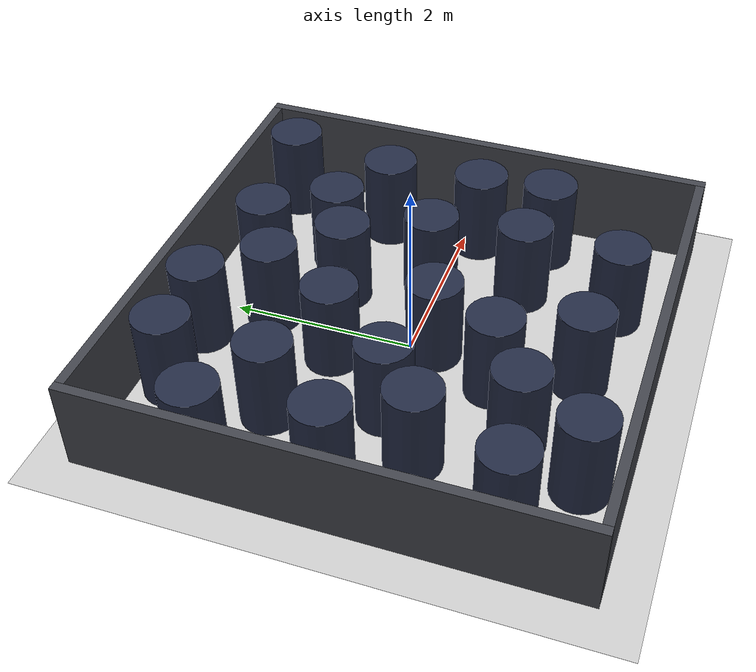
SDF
<sdf version="1.7">
 <world name="default">
  <light name="user_directional_light_0" type="directional">
   <pose>8.82764 2.91095 1 0 -0 0</pose>
   <diffuse>0.5 0.5 0.5 1</diffuse>
   <specular>0.1 0.1 0.1 1</specular>
   <attenuation>
    <range>1000</range>
    <constant>0.9</constant>
    <linear>0.01</linear>
    <quadratic>0.001</quadratic>
   </attenuation>
   <direction>0.1 0.1 -0.9</direction>
   <spot><inner_angle>0</inner_angle><outer_angle>0</outer_angle><falloff>0</falloff></spot>
  </light>
  <light name="user_directional_light_1" type="directional">
   <pose>-7.8244 2.91635 1 0 -0 0</pose>
   <diffuse>0.5 0.5 0.5 1</diffuse>
   <specular>0.1 0.1 0.1 1</specular>
   <attenuation>
    <range>1000</range>
    <constant>0.9</constant>
    <linear>0.01</linear>
    <quadratic>0.001</quadratic>
   </attenuation>
   <direction>0.1 0.1 -0.9</direction>
   <spot><inner_angle>0</inner_angle><outer_angle>0</outer_angle><falloff>0</falloff></spot>
  </light>
  <light name="user_directional_light_2" type="directional">
   <pose>-7.75772 -4.88479 1 0 -0 0</pose>
   <diffuse>0.5 0.5 0.5 1</diffuse>
   <specular>0.1 0.1 0.1 1</specular>
   <attenuation>
    <range>1000</range>
    <constant>0.9</constant>
    <linear>0.01</linear>
    <quadratic>0.001</quadratic>
   </attenuation>
   <direction>0.1 0.1 -0.9</direction>
   <spot><inner_angle>0</inner_angle><outer_angle>0</outer_angle><falloff>0</falloff></spot>
  </light>
  <light name="user_directional_light_3" type="directional">
   <pose>8.88456 -3.92028 1 0 -0 0</pose>
   <diffuse>0.5 0.5 0.5 1</diffuse>
   <specular>0.1 0.1 0.1 1</specular>
   <attenuation>
    <range>1000</range>
    <constant>0.9</constant>
    <linear>0.01</linear>
    <quadratic>0.001</quadratic>
   </attenuation>
   <direction>0.1 0.1 -0.9</direction>
   <spot><inner_angle>0</inner_angle><outer_angle>0</outer_angle><falloff>0</falloff></spot>
  </light>
  <model name="ground_plane">
   <static>1</static>
   <link name="link">
    <collision name="collision">
     <geometry><plane><normal>0 0 1</normal><size>100 100</size></plane></geometry>
     <surface>
      <contact><collide_bitmask>65535</collide_bitmask></contact>
      <friction><ode><mu>100</mu><mu2>50</mu2></ode></friction>
     </surface>
    </collision>
    <visual name="visual">
     <cast_shadows>0</cast_shadows>
     <geometry><plane><normal>0 0 1</normal><size>100 100</size></plane></geometry>
     <material>
      <script><uri>file://media/materials/scripts/gazebo.material</uri><name>Gazebo/Grey</name></script>
     </material>
    </visual>
   </link>
  </model>
  <gravity>0 0 -9.8</gravity>
  <magnetic_field>6e-06 2.3e-05 -4.2e-05</magnetic_field>
  <atmosphere type="adiabatic"/>
  <physics type="ode">
   <max_step_size>0.001</max_step_size>
   <real_time_factor>1</real_time_factor>
   <real_time_update_rate>1000</real_time_update_rate>
  </physics>
  <scene><ambient>0.32 0.32 0.32 1</ambient><background>0.7 0.7 0.7 1</background><shadows>1</shadows></scene>
  <spherical_coordinates>
   <surface_model>EARTH_WGS84</surface_model>
   <latitude_deg>0</latitude_deg>
   <longitude_deg>0</longitude_deg>
   <elevation>0</elevation>
   <heading_deg>0</heading_deg>
  </spherical_coordinates>
  <model name="region_wall_left">
   <static>1</static>
   <link name="link">
    <visual name="visual">
     <geometry><box><size>0.1 5.2 1</size></box></geometry>
     <material>
      <ambient>0.17 0.17 0.18 1</ambient>
      <diffuse>0.26 0.27 0.3 1</diffuse>
      <specular>0.02 0.02 0.02 1</specular>
     </material>
    </visual>
    <collision name="collision"><geometry><box><size>0.1 5.2 1</size></box></geometry></collision>
   </link>
   <pose>-2.55 0 0.5 0 -0 0</pose>
  </model>
  <model name="region_wall_right">
   <static>1</static>
   <link name="link">
    <visual name="visual">
     <geometry><box><size>0.1 5.2 1</size></box></geometry>
     <material>
      <ambient>0.17 0.17 0.18 1</ambient>
      <diffuse>0.26 0.27 0.3 1</diffuse>
      <specular>0.02 0.02 0.02 1</specular>
     </material>
    </visual>
    <collision name="collision"><geometry><box><size>0.1 5.2 1</size></box></geometry></collision>
   </link>
   <pose>2.55 0 0.5 0 -0 0</pose>
  </model>
  <model name="region_wall_bottom">
   <static>1</static>
   <link name="link">
    <visual name="visual">
     <geometry><box><size>5 0.1 1</size></box></geometry>
     <material>
      <ambient>0.17 0.17 0.18 1</ambient>
      <diffuse>0.26 0.27 0.3 1</diffuse>
      <specular>0.02 0.02 0.02 1</specular>
     </material>
    </visual>
    <collision name="collision"><geometry><box><size>5 0.1 1</size></box></geometry></collision>
   </link>
   <pose>0 -2.55 0.5 0 -0 0</pose>
  </model>
  <model name="region_wall_top">
   <static>1</static>
   <link name="link">
    <visual name="visual">
     <geometry><box><size>5 0.1 1</size></box></geometry>
     <material>
      <ambient>0.17 0.17 0.18 1</ambient>
      <diffuse>0.26 0.27 0.3 1</diffuse>
      <specular>0.02 0.02 0.02 1</specular>
     </material>
    </visual>
    <collision name="collision"><geometry><box><size>5 0.1 1</size></box></geometry></collision>
   </link>
   <pose>0 2.55 0.5 0 -0 0</pose>
  </model>
  <model name="blue_cylinder_0">
   <static>1</static>
   <link name="link">
    <visual name="visual">
     <geometry><cylinder><radius>0.3</radius><length>1</length></cylinder></geometry>
     <material>
      <ambient>0.06 0.07 0.112 1</ambient>
      <diffuse>0.14 0.17 0.27 1</diffuse>
      <specular>0.02 0.02 0.02 1</specular>
     </material>
    </visual>
    <collision name="collision">
     <geometry><cylinder><radius>0.3</radius><length>1</length></cylinder></geometry>
    </collision>
   </link>
   <pose>2.00979 -0.969959 0.5 0 -0 0</pose>
  </model>
  <model name="blue_cylinder_1">
   <static>1</static>
   <link name="link">
    <visual name="visual">
     <geometry><cylinder><radius>0.3</radius><length>1</length></cylinder></geometry>
     <material>
      <ambient>0.06 0.07 0.112 1</ambient>
      <diffuse>0.14 0.17 0.27 1</diffuse>
      <specular>0.02 0.02 0.02 1</specular>
     </material>
    </visual>
    <collision name="collision">
     <geometry><cylinder><radius>0.3</radius><length>1</length></cylinder></geometry>
    </collision>
   </link>
   <pose>0.036672 -1.82413 0.5 0 -0 0</pose>
  </model>
  <model name="blue_cylinder_2">
   <static>1</static>
   <link name="link">
    <visual name="visual">
     <geometry><cylinder><radius>0.3</radius><length>1</length></cylinder></geometry>
     <material>
      <ambient>0.06 0.07 0.112 1</ambient>
      <diffuse>0.14 0.17 0.27 1</diffuse>
      <specular>0.02 0.02 0.02 1</specular>
     </material>
    </visual>
    <collision name="collision">
     <geometry><cylinder><radius>0.3</radius><length>1</length></cylinder></geometry>
    </collision>
   </link>
   <pose>-2.13635 1.43056 0.5 0 -0 0</pose>
  </model>
  <model name="blue_cylinder_3">
   <static>1</static>
   <link name="link">
    <visual name="visual">
     <geometry><cylinder><radius>0.3</radius><length>1</length></cylinder></geometry>
     <material>
      <ambient>0.06 0.07 0.112 1</ambient>
      <diffuse>0.14 0.17 0.27 1</diffuse>
      <specular>0.02 0.02 0.02 1</specular>
     </material>
    </visual>
    <collision name="collision">
     <geometry><cylinder><radius>0.3</radius><length>1</length></cylinder></geometry>
    </collision>
   </link>
   <pose>1.19154 1.26825 0.5 0 -0 0</pose>
  </model>
  <model name="blue_cylinder_4">
   <static>1</static>
   <link name="link">
    <visual name="visual">
     <geometry><cylinder><radius>0.3</radius><length>1</length></cylinder></geometry>
     <material>
      <ambient>0.06 0.07 0.112 1</ambient>
      <diffuse>0.14 0.17 0.27 1</diffuse>
      <specular>0.02 0.02 0.02 1</specular>
     </material>
    </visual>
    <collision name="collision">
     <geometry><cylinder><radius>0.3</radius><length>1</length></cylinder></geometry>
    </collision>
   </link>
   <pose>1.0395 0.114704 0.5 0 -0 0</pose>
  </model>
  <model name="blue_cylinder_5">
   <static>1</static>
   <link name="link">
    <visual name="visual">
     <geometry><cylinder><radius>0.3</radius><length>1</length></cylinder></geometry>
     <material>
      <ambient>0.06 0.07 0.112 1</ambient>
      <diffuse>0.14 0.17 0.27 1</diffuse>
      <specular>0.02 0.02 0.02 1</specular>
     </material>
    </visual>
    <collision name="collision">
     <geometry><cylinder><radius>0.3</radius><length>1</length></cylinder></geometry>
    </collision>
   </link>
   <pose>-0.522202 2.15883 0.5 0 -0 0</pose>
  </model>
  <model name="blue_cylinder_6">
   <static>1</static>
   <link name="link">
    <visual name="visual">
     <geometry><cylinder><radius>0.3</radius><length>1</length></cylinder></geometry>
     <material>
      <ambient>0.06 0.07 0.112 1</ambient>
      <diffuse>0.14 0.17 0.27 1</diffuse>
      <specular>0.02 0.02 0.02 1</specular>
     </material>
    </visual>
    <collision name="collision">
     <geometry><cylinder><radius>0.3</radius><length>1</length></cylinder></geometry>
    </collision>
   </link>
   <pose>1.14475 -1.95257 0.5 0 -0 0</pose>
  </model>
  <model name="blue_cylinder_7">
   <static>1</static>
   <link name="link">
    <visual name="visual">
     <geometry><cylinder><radius>0.3</radius><length>1</length></cylinder></geometry>
     <material>
      <ambient>0.06 0.07 0.112 1</ambient>
      <diffuse>0.14 0.17 0.27 1</diffuse>
      <specular>0.02 0.02 0.02 1</specular>
     </material>
    </visual>
    <collision name="collision">
     <geometry><cylinder><radius>0.3</radius><length>1</length></cylinder></geometry>
    </collision>
   </link>
   <pose>0.606536 0.977576 0.5 0 -0 0</pose>
  </model>
  <model name="blue_cylinder_8">
   <static>1</static>
   <link name="link">
    <visual name="visual">
     <geometry><cylinder><radius>0.3</radius><length>1</length></cylinder></geometry>
     <material>
      <ambient>0.06 0.07 0.112 1</ambient>
      <diffuse>0.14 0.17 0.27 1</diffuse>
      <specular>0.02 0.02 0.02 1</specular>
     </material>
    </visual>
    <collision name="collision">
     <geometry><cylinder><radius>0.3</radius><length>1</length></cylinder></geometry>
    </collision>
   </link>
   <pose>-1.963 0.193201 0.5 0 -0 0</pose>
  </model>
  <model name="blue_cylinder_9">
   <static>1</static>
   <link name="link">
    <visual name="visual">
     <geometry><cylinder><radius>0.3</radius><length>1</length></cylinder></geometry>
     <material>
      <ambient>0.06 0.07 0.112 1</ambient>
      <diffuse>0.14 0.17 0.27 1</diffuse>
      <specular>0.02 0.02 0.02 1</specular>
     </material>
    </visual>
    <collision name="collision">
     <geometry><cylinder><radius>0.3</radius><length>1</length></cylinder></geometry>
    </collision>
   </link>
   <pose>-0.962573 -1.42307 0.5 0 -0 0</pose>
  </model>
  <model name="blue_cylinder_10">
   <static>1</static>
   <link name="link">
    <visual name="visual">
     <geometry><cylinder><radius>0.3</radius><length>1</length></cylinder></geometry>
     <material>
      <ambient>0.06 0.07 0.112 1</ambient>
      <diffuse>0.14 0.17 0.27 1</diffuse>
      <specular>0.02 0.02 0.02 1</specular>
     </material>
    </visual>
    <collision name="collision">
     <geometry><cylinder><radius>0.3</radius><length>1</length></cylinder></geometry>
    </collision>
   </link>
   <pose>-1.95138 -1.57151 0.5 0 -0 0</pose>
  </model>
  <model name="blue_cylinder_11">
   <static>1</static>
   <link name="link">
    <visual name="visual">
     <geometry><cylinder><radius>0.3</radius><length>1</length></cylinder></geometry>
     <material>
      <ambient>0.06 0.07 0.112 1</ambient>
      <diffuse>0.14 0.17 0.27 1</diffuse>
      <specular>0.02 0.02 0.02 1</specular>
     </material>
    </visual>
    <collision name="collision">
     <geometry><cylinder><radius>0.3</radius><length>1</length></cylinder></geometry>
    </collision>
   </link>
   <pose>-1.38526 1.02107 0.5 0 -0 0</pose>
  </model>
  <model name="blue_cylinder_12">
   <static>1</static>
   <link name="link">
    <visual name="visual">
     <geometry><cylinder><radius>0.3</radius><length>1</length></cylinder></geometry>
     <material>
      <ambient>0.06 0.07 0.112 1</ambient>
      <diffuse>0.14 0.17 0.27 1</diffuse>
      <specular>0.02 0.02 0.02 1</specular>
     </material>
    </visual>
    <collision name="collision">
     <geometry><cylinder><radius>0.3</radius><length>1</length></cylinder></geometry>
    </collision>
   </link>
   <pose>-1.03112 -0.081843 0.5 0 -0 0</pose>
  </model>
  <model name="blue_cylinder_13">
   <static>1</static>
   <link name="link">
    <visual name="visual">
     <geometry><cylinder><radius>0.3</radius><length>1</length></cylinder></geometry>
     <material>
      <ambient>0.06 0.07 0.112 1</ambient>
      <diffuse>0.14 0.17 0.27 1</diffuse>
      <specular>0.02 0.02 0.02 1</specular>
     </material>
    </visual>
    <collision name="collision">
     <geometry><cylinder><radius>0.3</radius><length>1</length></cylinder></geometry>
    </collision>
   </link>
   <pose>-0.40781 0.728001 0.5 0 -0 0</pose>
  </model>
  <model name="blue_cylinder_14">
   <static>1</static>
   <link name="link">
    <visual name="visual">
     <geometry><cylinder><radius>0.3</radius><length>1</length></cylinder></geometry>
     <material>
      <ambient>0.06 0.07 0.112 1</ambient>
      <diffuse>0.14 0.17 0.27 1</diffuse>
      <specular>0.02 0.02 0.02 1</specular>
     </material>
    </visual>
    <collision name="collision">
     <geometry><cylinder><radius>0.3</radius><length>1</length></cylinder></geometry>
    </collision>
   </link>
   <pose>0.001434 1.56956 0.5 0 -0 0</pose>
  </model>
  <model name="blue_cylinder_15">
   <static>1</static>
   <link name="link">
    <visual name="visual">
     <geometry><cylinder><radius>0.3</radius><length>1</length></cylinder></geometry>
     <material>
      <ambient>0.06 0.07 0.112 1</ambient>
      <diffuse>0.14 0.17 0.27 1</diffuse>
      <specular>0.02 0.02 0.02 1</specular>
     </material>
    </visual>
    <collision name="collision">
     <geometry><cylinder><radius>0.3</radius><length>1</length></cylinder></geometry>
    </collision>
   </link>
   <pose>1.19446 -0.892826 0.5 0 -0 0</pose>
  </model>
  <model name="blue_cylinder_16">
   <static>1</static>
   <link name="link">
    <visual name="visual">
     <geometry><cylinder><radius>0.3</radius><length>1</length></cylinder></geometry>
     <material>
      <ambient>0.06 0.07 0.112 1</ambient>
      <diffuse>0.14 0.17 0.27 1</diffuse>
      <specular>0.02 0.02 0.02 1</specular>
     </material>
    </visual>
    <collision name="collision">
     <geometry><cylinder><radius>0.3</radius><length>1</length></cylinder></geometry>
    </collision>
   </link>
   <pose>-1.35375 2.1246 0.5 0 -0 0</pose>
  </model>
  <model name="blue_cylinder_17">
   <static>1</static>
   <link name="link">
    <visual name="visual">
     <geometry><cylinder><radius>0.3</radius><length>1</length></cylinder></geometry>
     <material>
      <ambient>0.06 0.07 0.112 1</ambient>
      <diffuse>0.14 0.17 0.27 1</diffuse>
      <specular>0.02 0.02 0.02 1</specular>
     </material>
    </visual>
    <collision name="collision">
     <geometry><cylinder><radius>0.3</radius><length>1</length></cylinder></geometry>
    </collision>
   </link>
   <pose>0.724038 1.9563 0.5 0 -0 0</pose>
  </model>
  <model name="blue_cylinder_18">
   <static>1</static>
   <link name="link">
    <visual name="visual">
     <geometry><cylinder><radius>0.3</radius><length>1</length></cylinder></geometry>
     <material>
      <ambient>0.06 0.07 0.112 1</ambient>
      <diffuse>0.14 0.17 0.27 1</diffuse>
      <specular>0.02 0.02 0.02 1</specular>
     </material>
    </visual>
    <collision name="collision">
     <geometry><cylinder><radius>0.3</radius><length>1</length></cylinder></geometry>
    </collision>
   </link>
   <pose>-0.006263 -0.262038 0.5 0 -0 0</pose>
  </model>
  <model name="blue_cylinder_19">
   <static>1</static>
   <link name="link">
    <visual name="visual">
     <geometry><cylinder><radius>0.3</radius><length>1</length></cylinder></geometry>
     <material>
      <ambient>0.06 0.07 0.112 1</ambient>
      <diffuse>0.14 0.17 0.27 1</diffuse>
      <specular>0.02 0.02 0.02 1</specular>
     </material>
    </visual>
    <collision name="collision">
     <geometry><cylinder><radius>0.3</radius><length>1</length></cylinder></geometry>
    </collision>
   </link>
   <pose>1.88887 0.883061 0.5 0 -0 0</pose>
  </model>
  <model name="blue_cylinder_20">
   <static>1</static>
   <link name="link">
    <visual name="visual">
     <geometry><cylinder><radius>0.3</radius><length>1</length></cylinder></geometry>
     <material>
      <ambient>0.06 0.07 0.112 1</ambient>
      <diffuse>0.14 0.17 0.27 1</diffuse>
      <specular>0.02 0.02 0.02 1</specular>
     </material>
    </visual>
    <collision name="collision">
     <geometry><cylinder><radius>0.3</radius><length>1</length></cylinder></geometry>
    </collision>
   </link>
   <pose>-0.325364 -0.992765 0.5 0 -0 0</pose>
  </model>
  <model name="blue_cylinder_21">
   <static>1</static>
   <link name="link">
    <visual name="visual">
     <geometry><cylinder><radius>0.3</radius><length>1</length></cylinder></geometry>
     <material>
      <ambient>0.06 0.07 0.112 1</ambient>
      <diffuse>0.14 0.17 0.27 1</diffuse>
      <specular>0.02 0.02 0.02 1</specular>
     </material>
    </visual>
    <collision name="collision">
     <geometry><cylinder><radius>0.3</radius><length>1</length></cylinder></geometry>
    </collision>
   </link>
   <pose>1.94902 -0.182709 0.5 0 -0 0</pose>
  </model>
  <model name="blue_cylinder_22">
   <static>1</static>
   <link name="link">
    <visual name="visual">
     <geometry><cylinder><radius>0.3</radius><length>1</length></cylinder></geometry>
     <material>
      <ambient>0.06 0.07 0.112 1</ambient>
      <diffuse>0.14 0.17 0.27 1</diffuse>
      <specular>0.02 0.02 0.02 1</specular>
     </material>
    </visual>
    <collision name="collision">
     <geometry><cylinder><radius>0.3</radius><length>1</length></cylinder></geometry>
    </collision>
   </link>
   <pose>-1.35697 -2.14467 0.5 0 -0 0</pose>
  </model>
  <model name="blue_cylinder_23">
   <static>1</static>
   <link name="link">
    <visual name="visual">
     <geometry><cylinder><radius>0.3</radius><length>1</length></cylinder></geometry>
     <material>
      <ambient>0.06 0.07 0.112 1</ambient>
      <diffuse>0.14 0.17 0.27 1</diffuse>
      <specular>0.02 0.02 0.02 1</specular>
     </material>
    </visual>
    <collision name="collision">
     <geometry><cylinder><radius>0.3</radius><length>1</length></cylinder></geometry>
    </collision>
   </link>
   <pose>-1.52676 -0.545568 0.5 0 -0 0</pose>
  </model>
  <model name="blue_cylinder_24">
   <static>1</static>
   <link name="link">
    <visual name="visual">
     <geometry><cylinder><radius>0.3</radius><length>1</length></cylinder></geometry>
     <material>
      <ambient>0.06 0.07 0.112 1</ambient>
      <diffuse>0.14 0.17 0.27 1</diffuse>
      <specular>0.02 0.02 0.02 1</specular>
     </material>
    </visual>
    <collision name="collision">
     <geometry><cylinder><radius>0.3</radius><length>1</length></cylinder></geometry>
    </collision>
   </link>
   <pose>2.08696 2.13368 0.5 0 -0 0</pose>
  </model>
 </world>
</sdf>
